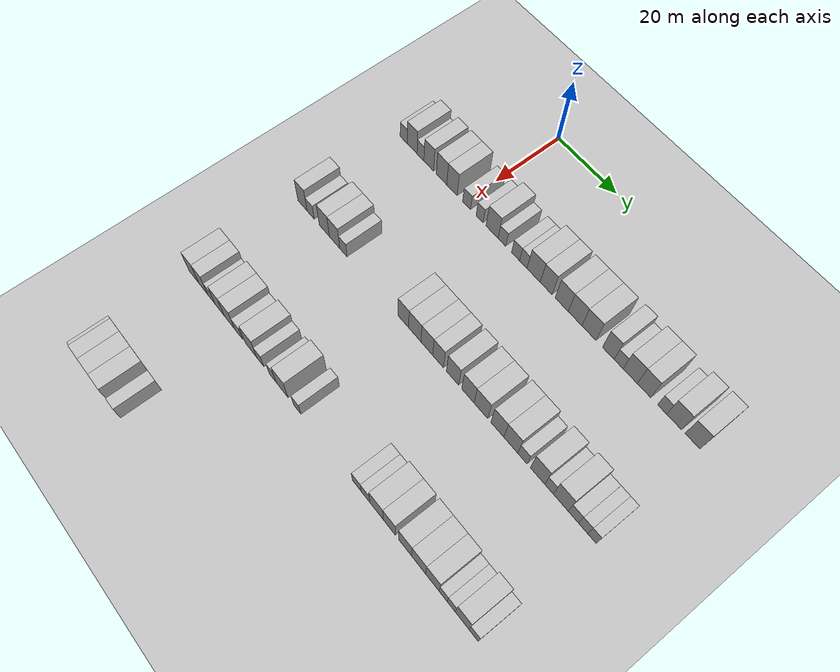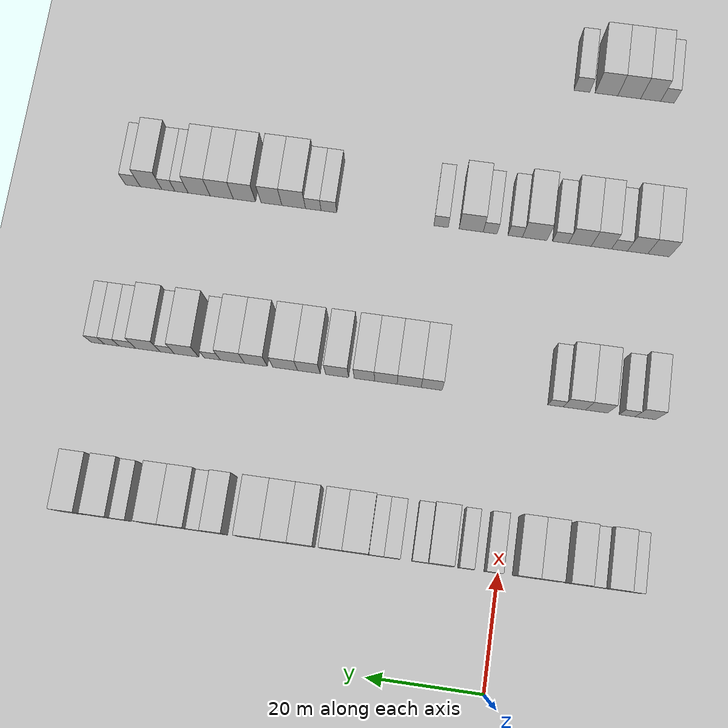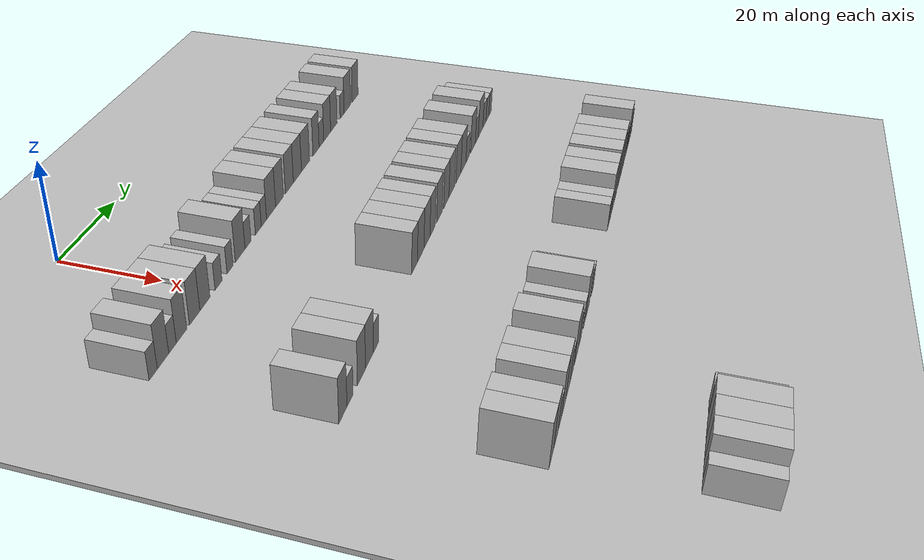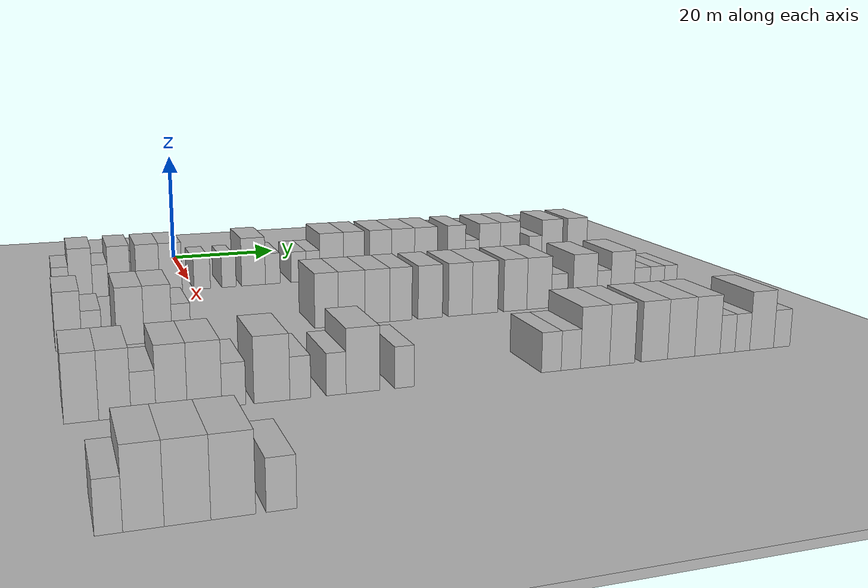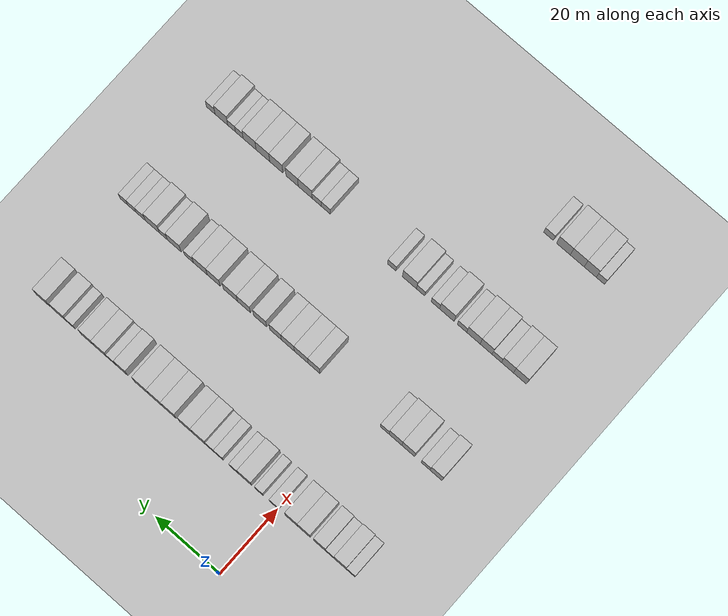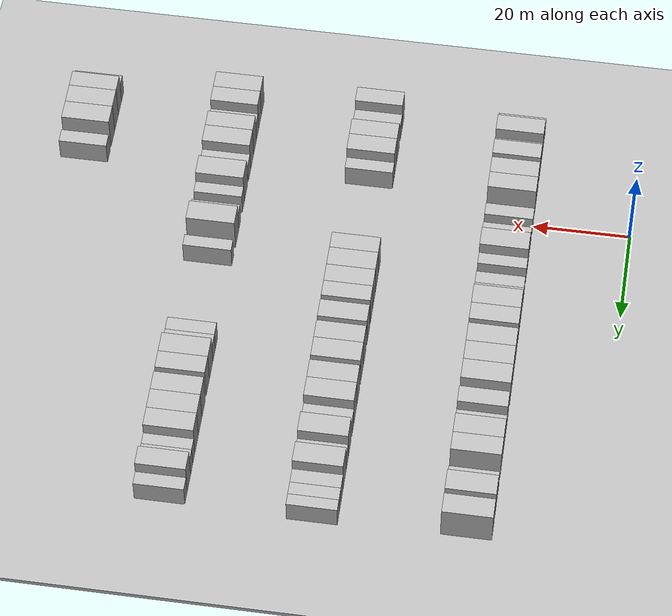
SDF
<sdf version="1.6">
 <world name="default">
  <include><name>ground_plane_1</name><uri>model://HANNAS_ground_plane</uri></include>
  <include>
   <name>ground_plane_2</name>
   <uri>model://HANNAS_ground_plane</uri>
   <pose>100 0 0  0 0 0</pose>
  </include>
  <model name="building_104">
   <static>1</static>
   <pose>25.0000 -22.5102 0 0.000000 0.000000 0.000000</pose>
   <link name="link">
    <pose>0 0 3.00 0 0 0</pose>
    <collision name="collision"><geometry><box><size>10.0000 2.6948 6.0000</size></box></geometry></collision>
    <visual name="visual">
     <cast_shadows>0</cast_shadows>
     <geometry><box><size>10.0000 2.6948 6.0000</size></box></geometry>
     <material>
      <script>
       <uri>model://HANNAS_wall/materials/scripts</uri>
       <uri>model://HANNAS_wall/materials/textures</uri>
       <name>vrc/HANNAS_wall</name>
      </script>
     </material>
    </visual>
   </link>
  </model>
  <model name="building_105">
   <static>1</static>
   <pose>25.0000 -19.2534 0 0.000000 0.000000 0.000000</pose>
   <link name="link">
    <pose>0 0 4.50 0 0 0</pose>
    <collision name="collision"><geometry><box><size>10.0000 3.8188 9.0000</size></box></geometry></collision>
    <visual name="visual">
     <cast_shadows>0</cast_shadows>
     <geometry><box><size>10.0000 3.8188 9.0000</size></box></geometry>
     <material>
      <script>
       <uri>model://HANNAS_wall/materials/scripts</uri>
       <uri>model://HANNAS_wall/materials/textures</uri>
       <name>vrc/HANNAS_wall</name>
      </script>
     </material>
    </visual>
   </link>
  </model>
  <model name="building_106">
   <static>1</static>
   <pose>25.0000 -16.0500 0 0.000000 0.000000 0.000000</pose>
   <link name="link">
    <pose>0 0 3.00 0 0 0</pose>
    <collision name="collision"><geometry><box><size>10.0000 2.5881 6.0000</size></box></geometry></collision>
    <visual name="visual">
     <cast_shadows>0</cast_shadows>
     <geometry><box><size>10.0000 2.5881 6.0000</size></box></geometry>
     <material>
      <script>
       <uri>model://HANNAS_wall/materials/scripts</uri>
       <uri>model://HANNAS_wall/materials/textures</uri>
       <name>vrc/HANNAS_wall</name>
      </script>
     </material>
    </visual>
   </link>
  </model>
  <model name="building_107">
   <static>1</static>
   <pose>25.0000 -12.9239 0 0.000000 0.000000 0.000000</pose>
   <link name="link">
    <pose>0 0 4.50 0 0 0</pose>
    <collision name="collision"><geometry><box><size>10.0000 3.6641 9.0000</size></box></geometry></collision>
    <visual name="visual">
     <cast_shadows>0</cast_shadows>
     <geometry><box><size>10.0000 3.6641 9.0000</size></box></geometry>
     <material>
      <script>
       <uri>model://HANNAS_wall/materials/scripts</uri>
       <uri>model://HANNAS_wall/materials/textures</uri>
       <name>vrc/HANNAS_wall</name>
      </script>
     </material>
    </visual>
   </link>
  </model>
  <model name="building_108">
   <static>1</static>
   <pose>25.0000 -8.1475 0 0.000000 0.000000 0.000000</pose>
   <link name="link">
    <pose>0 0 4.50 0 0 0</pose>
    <collision name="collision"><geometry><box><size>10.0000 3.8888 9.0000</size></box></geometry></collision>
    <visual name="visual">
     <cast_shadows>0</cast_shadows>
     <geometry><box><size>10.0000 3.8888 9.0000</size></box></geometry>
     <material>
      <script>
       <uri>model://HANNAS_wall/materials/scripts</uri>
       <uri>model://HANNAS_wall/materials/textures</uri>
       <name>vrc/HANNAS_wall</name>
      </script>
     </material>
    </visual>
   </link>
  </model>
  <model name="building_109">
   <static>1</static>
   <pose>25.0000 -4.2814 0 0.000000 0.000000 0.000000</pose>
   <link name="link">
    <pose>0 0 4.50 0 0 0</pose>
    <collision name="collision"><geometry><box><size>10.0000 3.8434 9.0000</size></box></geometry></collision>
    <visual name="visual">
     <cast_shadows>0</cast_shadows>
     <geometry><box><size>10.0000 3.8434 9.0000</size></box></geometry>
     <material>
      <script>
       <uri>model://HANNAS_wall/materials/scripts</uri>
       <uri>model://HANNAS_wall/materials/textures</uri>
       <name>vrc/HANNAS_wall</name>
      </script>
     </material>
    </visual>
   </link>
  </model>
  <model name="building_110">
   <static>1</static>
   <pose>25.0000 1.0662 0 0.000000 0.000000 0.000000</pose>
   <link name="link">
    <pose>0 0 3.00 0 0 0</pose>
    <collision name="collision"><geometry><box><size>10.0000 2.8519 6.0000</size></box></geometry></collision>
    <visual name="visual">
     <cast_shadows>0</cast_shadows>
     <geometry><box><size>10.0000 2.8519 6.0000</size></box></geometry>
     <material>
      <script>
       <uri>model://HANNAS_wall/materials/scripts</uri>
       <uri>model://HANNAS_wall/materials/textures</uri>
       <name>vrc/HANNAS_wall</name>
      </script>
     </material>
    </visual>
   </link>
  </model>
  <model name="building_111">
   <static>1</static>
   <pose>25.0000 5.7460 0 0.000000 0.000000 0.000000</pose>
   <link name="link">
    <pose>0 0 3.00 0 0 0</pose>
    <collision name="collision"><geometry><box><size>10.0000 2.5076 6.0000</size></box></geometry></collision>
    <visual name="visual">
     <cast_shadows>0</cast_shadows>
     <geometry><box><size>10.0000 2.5076 6.0000</size></box></geometry>
     <material>
      <script>
       <uri>model://HANNAS_wall/materials/scripts</uri>
       <uri>model://HANNAS_wall/materials/textures</uri>
       <name>vrc/HANNAS_wall</name>
      </script>
     </material>
    </visual>
   </link>
  </model>
  <model name="building_112">
   <static>1</static>
   <pose>25.0000 10.1186 0 0.000000 0.000000 0.000000</pose>
   <link name="link">
    <pose>0 0 4.50 0 0 0</pose>
    <collision name="collision"><geometry><box><size>10.0000 4.2375 9.0000</size></box></geometry></collision>
    <visual name="visual">
     <cast_shadows>0</cast_shadows>
     <geometry><box><size>10.0000 4.2375 9.0000</size></box></geometry>
     <material>
      <script>
       <uri>model://HANNAS_wall/materials/scripts</uri>
       <uri>model://HANNAS_wall/materials/textures</uri>
       <name>vrc/HANNAS_wall</name>
      </script>
     </material>
    </visual>
   </link>
  </model>
  <model name="building_113">
   <static>1</static>
   <pose>25.0000 13.5676 0 0.000000 0.000000 0.000000</pose>
   <link name="link">
    <pose>0 0 3.00 0 0 0</pose>
    <collision name="collision"><geometry><box><size>10.0000 2.6605 6.0000</size></box></geometry></collision>
    <visual name="visual">
     <cast_shadows>0</cast_shadows>
     <geometry><box><size>10.0000 2.6605 6.0000</size></box></geometry>
     <material>
      <script>
       <uri>model://HANNAS_wall/materials/scripts</uri>
       <uri>model://HANNAS_wall/materials/textures</uri>
       <name>vrc/HANNAS_wall</name>
      </script>
     </material>
    </visual>
   </link>
  </model>
  <model name="building_114">
   <static>1</static>
   <pose>25.0000 18.2735 0 0.000000 0.000000 0.000000</pose>
   <link name="link">
    <pose>0 0 3.00 0 0 0</pose>
    <collision name="collision"><geometry><box><size>10.0000 2.7513 6.0000</size></box></geometry></collision>
    <visual name="visual">
     <cast_shadows>0</cast_shadows>
     <geometry><box><size>10.0000 2.7513 6.0000</size></box></geometry>
     <material>
      <script>
       <uri>model://HANNAS_wall/materials/scripts</uri>
       <uri>model://HANNAS_wall/materials/textures</uri>
       <name>vrc/HANNAS_wall</name>
      </script>
     </material>
    </visual>
   </link>
  </model>
  <model name="building_115">
   <static>1</static>
   <pose>25.0000 20.9098 0 0.000000 0.000000 0.000000</pose>
   <link name="link">
    <pose>0 0 3.00 0 0 0</pose>
    <collision name="collision"><geometry><box><size>10.0000 2.5214 6.0000</size></box></geometry></collision>
    <visual name="visual">
     <cast_shadows>0</cast_shadows>
     <geometry><box><size>10.0000 2.5214 6.0000</size></box></geometry>
     <material>
      <script>
       <uri>model://HANNAS_wall/materials/scripts</uri>
       <uri>model://HANNAS_wall/materials/textures</uri>
       <name>vrc/HANNAS_wall</name>
      </script>
     </material>
    </visual>
   </link>
  </model>
  <model name="building_116">
   <static>1</static>
   <pose>25.0000 24.3897 0 0.000000 0.000000 0.000000</pose>
   <link name="link">
    <pose>0 0 4.50 0 0 0</pose>
    <collision name="collision"><geometry><box><size>10.0000 4.4384 9.0000</size></box></geometry></collision>
    <visual name="visual">
     <cast_shadows>0</cast_shadows>
     <geometry><box><size>10.0000 4.4384 9.0000</size></box></geometry>
     <material>
      <script>
       <uri>model://HANNAS_wall/materials/scripts</uri>
       <uri>model://HANNAS_wall/materials/textures</uri>
       <name>vrc/HANNAS_wall</name>
      </script>
     </material>
    </visual>
   </link>
  </model>
  <model name="building_117">
   <static>1</static>
   <pose>25.0000 28.5710 0 0.000000 0.000000 0.000000</pose>
   <link name="link">
    <pose>0 0 4.50 0 0 0</pose>
    <collision name="collision"><geometry><box><size>10.0000 3.9242 9.0000</size></box></geometry></collision>
    <visual name="visual">
     <cast_shadows>0</cast_shadows>
     <geometry><box><size>10.0000 3.9242 9.0000</size></box></geometry>
     <material>
      <script>
       <uri>model://HANNAS_wall/materials/scripts</uri>
       <uri>model://HANNAS_wall/materials/textures</uri>
       <name>vrc/HANNAS_wall</name>
      </script>
     </material>
    </visual>
   </link>
  </model>
  <model name="building_118">
   <static>1</static>
   <pose>25.0000 33.6658 0 0.000000 0.000000 0.000000</pose>
   <link name="link">
    <pose>0 0 4.50 0 0 0</pose>
    <collision name="collision"><geometry><box><size>10.0000 4.2655 9.0000</size></box></geometry></collision>
    <visual name="visual">
     <cast_shadows>0</cast_shadows>
     <geometry><box><size>10.0000 4.2655 9.0000</size></box></geometry>
     <material>
      <script>
       <uri>model://HANNAS_wall/materials/scripts</uri>
       <uri>model://HANNAS_wall/materials/textures</uri>
       <name>vrc/HANNAS_wall</name>
      </script>
     </material>
    </visual>
   </link>
  </model>
  <model name="building_119">
   <static>1</static>
   <pose>25.0000 37.9929 0 0.000000 0.000000 0.000000</pose>
   <link name="link">
    <pose>0 0 4.50 0 0 0</pose>
    <collision name="collision"><geometry><box><size>10.0000 4.3886 9.0000</size></box></geometry></collision>
    <visual name="visual">
     <cast_shadows>0</cast_shadows>
     <geometry><box><size>10.0000 4.3886 9.0000</size></box></geometry>
     <material>
      <script>
       <uri>model://HANNAS_wall/materials/scripts</uri>
       <uri>model://HANNAS_wall/materials/textures</uri>
       <name>vrc/HANNAS_wall</name>
      </script>
     </material>
    </visual>
   </link>
  </model>
  <model name="building_120">
   <static>1</static>
   <pose>25.0000 42.4269 0 0.000000 0.000000 0.000000</pose>
   <link name="link">
    <pose>0 0 4.50 0 0 0</pose>
    <collision name="collision"><geometry><box><size>10.0000 4.4793 9.0000</size></box></geometry></collision>
    <visual name="visual">
     <cast_shadows>0</cast_shadows>
     <geometry><box><size>10.0000 4.4793 9.0000</size></box></geometry>
     <material>
      <script>
       <uri>model://HANNAS_wall/materials/scripts</uri>
       <uri>model://HANNAS_wall/materials/textures</uri>
       <name>vrc/HANNAS_wall</name>
      </script>
     </material>
    </visual>
   </link>
  </model>
  <model name="building_121">
   <static>1</static>
   <pose>25.0000 48.4725 0 0.000000 0.000000 0.000000</pose>
   <link name="link">
    <pose>0 0 4.50 0 0 0</pose>
    <collision name="collision"><geometry><box><size>10.0000 3.6120 9.0000</size></box></geometry></collision>
    <visual name="visual">
     <cast_shadows>0</cast_shadows>
     <geometry><box><size>10.0000 3.6120 9.0000</size></box></geometry>
     <material>
      <script>
       <uri>model://HANNAS_wall/materials/scripts</uri>
       <uri>model://HANNAS_wall/materials/textures</uri>
       <name>vrc/HANNAS_wall</name>
      </script>
     </material>
    </visual>
   </link>
  </model>
  <model name="building_122">
   <static>1</static>
   <pose>25.0000 51.6666 0 0.000000 0.000000 0.000000</pose>
   <link name="link">
    <pose>0 0 3.00 0 0 0</pose>
    <collision name="collision"><geometry><box><size>10.0000 2.7762 6.0000</size></box></geometry></collision>
    <visual name="visual">
     <cast_shadows>0</cast_shadows>
     <geometry><box><size>10.0000 2.7762 6.0000</size></box></geometry>
     <material>
      <script>
       <uri>model://HANNAS_wall/materials/scripts</uri>
       <uri>model://HANNAS_wall/materials/textures</uri>
       <name>vrc/HANNAS_wall</name>
      </script>
     </material>
    </visual>
   </link>
  </model>
  <model name="building_123">
   <static>1</static>
   <pose>25.0000 55.1984 0 0.000000 0.000000 0.000000</pose>
   <link name="link">
    <pose>0 0 4.50 0 0 0</pose>
    <collision name="collision"><geometry><box><size>10.0000 4.2874 9.0000</size></box></geometry></collision>
    <visual name="visual">
     <cast_shadows>0</cast_shadows>
     <geometry><box><size>10.0000 4.2874 9.0000</size></box></geometry>
     <material>
      <script>
       <uri>model://HANNAS_wall/materials/scripts</uri>
       <uri>model://HANNAS_wall/materials/textures</uri>
       <name>vrc/HANNAS_wall</name>
      </script>
     </material>
    </visual>
   </link>
  </model>
  <model name="building_124">
   <static>1</static>
   <pose>25.0000 59.3511 0 0.000000 0.000000 0.000000</pose>
   <link name="link">
    <pose>0 0 4.50 0 0 0</pose>
    <collision name="collision"><geometry><box><size>10.0000 4.0181 9.0000</size></box></geometry></collision>
    <visual name="visual">
     <cast_shadows>0</cast_shadows>
     <geometry><box><size>10.0000 4.0181 9.0000</size></box></geometry>
     <material>
      <script>
       <uri>model://HANNAS_wall/materials/scripts</uri>
       <uri>model://HANNAS_wall/materials/textures</uri>
       <name>vrc/HANNAS_wall</name>
      </script>
     </material>
    </visual>
   </link>
  </model>
  <model name="building_125">
   <static>1</static>
   <pose>25.0000 64.6776 0 0.000000 0.000000 0.000000</pose>
   <link name="link">
    <pose>0 0 3.00 0 0 0</pose>
    <collision name="collision"><geometry><box><size>10.0000 2.6349 6.0000</size></box></geometry></collision>
    <visual name="visual">
     <cast_shadows>0</cast_shadows>
     <geometry><box><size>10.0000 2.6349 6.0000</size></box></geometry>
     <material>
      <script>
       <uri>model://HANNAS_wall/materials/scripts</uri>
       <uri>model://HANNAS_wall/materials/textures</uri>
       <name>vrc/HANNAS_wall</name>
      </script>
     </material>
    </visual>
   </link>
  </model>
  <model name="building_126">
   <static>1</static>
   <pose>25.0000 68.1694 0 0.000000 0.000000 0.000000</pose>
   <link name="link">
    <pose>0 0 4.50 0 0 0</pose>
    <collision name="collision"><geometry><box><size>10.0000 4.3487 9.0000</size></box></geometry></collision>
    <visual name="visual">
     <cast_shadows>0</cast_shadows>
     <geometry><box><size>10.0000 4.3487 9.0000</size></box></geometry>
     <material>
      <script>
       <uri>model://HANNAS_wall/materials/scripts</uri>
       <uri>model://HANNAS_wall/materials/textures</uri>
       <name>vrc/HANNAS_wall</name>
      </script>
     </material>
    </visual>
   </link>
  </model>
  <model name="building_127">
   <static>1</static>
   <pose>25.0000 73.4701 0 0.000000 0.000000 0.000000</pose>
   <link name="link">
    <pose>0 0 4.50 0 0 0</pose>
    <collision name="collision"><geometry><box><size>10.0000 4.2526 9.0000</size></box></geometry></collision>
    <visual name="visual">
     <cast_shadows>0</cast_shadows>
     <geometry><box><size>10.0000 4.2526 9.0000</size></box></geometry>
     <material>
      <script>
       <uri>model://HANNAS_wall/materials/scripts</uri>
       <uri>model://HANNAS_wall/materials/textures</uri>
       <name>vrc/HANNAS_wall</name>
      </script>
     </material>
    </visual>
   </link>
  </model>
  <model name="building_341">
   <static>1</static>
   <pose>55.0000 -22.4541 0 0.000000 0.000000 0.000000</pose>
   <link name="link">
    <pose>0 0 4.50 0 0 0</pose>
    <collision name="collision"><geometry><box><size>10.0000 3.6306 9.0000</size></box></geometry></collision>
    <visual name="visual">
     <cast_shadows>0</cast_shadows>
     <geometry><box><size>10.0000 3.6306 9.0000</size></box></geometry>
     <material>
      <script>
       <uri>model://HANNAS_wall/materials/scripts</uri>
       <uri>model://HANNAS_wall/materials/textures</uri>
       <name>vrc/HANNAS_wall</name>
      </script>
     </material>
    </visual>
   </link>
  </model>
  <model name="building_342">
   <static>1</static>
   <pose>55.0000 -19.2400 0 0.000000 0.000000 0.000000</pose>
   <link name="link">
    <pose>0 0 3.00 0 0 0</pose>
    <collision name="collision"><geometry><box><size>10.0000 2.7975 6.0000</size></box></geometry></collision>
    <visual name="visual">
     <cast_shadows>0</cast_shadows>
     <geometry><box><size>10.0000 2.7975 6.0000</size></box></geometry>
     <material>
      <script>
       <uri>model://HANNAS_wall/materials/scripts</uri>
       <uri>model://HANNAS_wall/materials/textures</uri>
       <name>vrc/HANNAS_wall</name>
      </script>
     </material>
    </visual>
   </link>
  </model>
  <model name="building_343">
   <static>1</static>
   <pose>55.0000 -13.8850 0 0.000000 0.000000 0.000000</pose>
   <link name="link">
    <pose>0 0 4.50 0 0 0</pose>
    <collision name="collision"><geometry><box><size>10.0000 3.9126 9.0000</size></box></geometry></collision>
    <visual name="visual">
     <cast_shadows>0</cast_shadows>
     <geometry><box><size>10.0000 3.9126 9.0000</size></box></geometry>
     <material>
      <script>
       <uri>model://HANNAS_wall/materials/scripts</uri>
       <uri>model://HANNAS_wall/materials/textures</uri>
       <name>vrc/HANNAS_wall</name>
      </script>
     </material>
    </visual>
   </link>
  </model>
  <model name="building_344">
   <static>1</static>
   <pose>55.0000 -9.9406 0 0.000000 0.000000 0.000000</pose>
   <link name="link">
    <pose>0 0 4.50 0 0 0</pose>
    <collision name="collision"><geometry><box><size>10.0000 3.9762 9.0000</size></box></geometry></collision>
    <visual name="visual">
     <cast_shadows>0</cast_shadows>
     <geometry><box><size>10.0000 3.9762 9.0000</size></box></geometry>
     <material>
      <script>
       <uri>model://HANNAS_wall/materials/scripts</uri>
       <uri>model://HANNAS_wall/materials/textures</uri>
       <name>vrc/HANNAS_wall</name>
      </script>
     </material>
    </visual>
   </link>
  </model>
  <model name="building_345">
   <static>1</static>
   <pose>55.0000 -6.5984 0 0.000000 0.000000 0.000000</pose>
   <link name="link">
    <pose>0 0 3.00 0 0 0</pose>
    <collision name="collision"><geometry><box><size>10.0000 2.7082 6.0000</size></box></geometry></collision>
    <visual name="visual">
     <cast_shadows>0</cast_shadows>
     <geometry><box><size>10.0000 2.7082 6.0000</size></box></geometry>
     <material>
      <script>
       <uri>model://HANNAS_wall/materials/scripts</uri>
       <uri>model://HANNAS_wall/materials/textures</uri>
       <name>vrc/HANNAS_wall</name>
      </script>
     </material>
    </visual>
   </link>
  </model>
  <model name="building_346">
   <static>1</static>
   <pose>55.0000 15.3348 0 0.000000 0.000000 0.000000</pose>
   <link name="link">
    <pose>0 0 4.50 0 0 0</pose>
    <collision name="collision"><geometry><box><size>10.0000 3.7194 9.0000</size></box></geometry></collision>
    <visual name="visual">
     <cast_shadows>0</cast_shadows>
     <geometry><box><size>10.0000 3.7194 9.0000</size></box></geometry>
     <material>
      <script>
       <uri>model://HANNAS_wall/materials/scripts</uri>
       <uri>model://HANNAS_wall/materials/textures</uri>
       <name>vrc/HANNAS_wall</name>
      </script>
     </material>
    </visual>
   </link>
  </model>
  <model name="building_347">
   <static>1</static>
   <pose>55.0000 19.3232 0 0.000000 0.000000 0.000000</pose>
   <link name="link">
    <pose>0 0 4.50 0 0 0</pose>
    <collision name="collision"><geometry><box><size>10.0000 4.2572 9.0000</size></box></geometry></collision>
    <visual name="visual">
     <cast_shadows>0</cast_shadows>
     <geometry><box><size>10.0000 4.2572 9.0000</size></box></geometry>
     <material>
      <script>
       <uri>model://HANNAS_wall/materials/scripts</uri>
       <uri>model://HANNAS_wall/materials/textures</uri>
       <name>vrc/HANNAS_wall</name>
      </script>
     </material>
    </visual>
   </link>
  </model>
  <model name="building_348">
   <static>1</static>
   <pose>55.0000 23.4698 0 0.000000 0.000000 0.000000</pose>
   <link name="link">
    <pose>0 0 4.50 0 0 0</pose>
    <collision name="collision"><geometry><box><size>10.0000 4.0360 9.0000</size></box></geometry></collision>
    <visual name="visual">
     <cast_shadows>0</cast_shadows>
     <geometry><box><size>10.0000 4.0360 9.0000</size></box></geometry>
     <material>
      <script>
       <uri>model://HANNAS_wall/materials/scripts</uri>
       <uri>model://HANNAS_wall/materials/textures</uri>
       <name>vrc/HANNAS_wall</name>
      </script>
     </material>
    </visual>
   </link>
  </model>
  <model name="building_349">
   <static>1</static>
   <pose>55.0000 27.2966 0 0.000000 0.000000 0.000000</pose>
   <link name="link">
    <pose>0 0 4.50 0 0 0</pose>
    <collision name="collision"><geometry><box><size>10.0000 3.6177 9.0000</size></box></geometry></collision>
    <visual name="visual">
     <cast_shadows>0</cast_shadows>
     <geometry><box><size>10.0000 3.6177 9.0000</size></box></geometry>
     <material>
      <script>
       <uri>model://HANNAS_wall/materials/scripts</uri>
       <uri>model://HANNAS_wall/materials/textures</uri>
       <name>vrc/HANNAS_wall</name>
      </script>
     </material>
    </visual>
   </link>
  </model>
  <model name="building_350">
   <static>1</static>
   <pose>55.0000 32.1451 0 0.000000 0.000000 0.000000</pose>
   <link name="link">
    <pose>0 0 4.50 0 0 0</pose>
    <collision name="collision"><geometry><box><size>10.0000 4.0793 9.0000</size></box></geometry></collision>
    <visual name="visual">
     <cast_shadows>0</cast_shadows>
     <geometry><box><size>10.0000 4.0793 9.0000</size></box></geometry>
     <material>
      <script>
       <uri>model://HANNAS_wall/materials/scripts</uri>
       <uri>model://HANNAS_wall/materials/textures</uri>
       <name>vrc/HANNAS_wall</name>
      </script>
     </material>
    </visual>
   </link>
  </model>
  <model name="building_351">
   <static>1</static>
   <pose>55.0000 37.2063 0 0.000000 0.000000 0.000000</pose>
   <link name="link">
    <pose>0 0 4.50 0 0 0</pose>
    <collision name="collision"><geometry><box><size>10.0000 4.0430 9.0000</size></box></geometry></collision>
    <visual name="visual">
     <cast_shadows>0</cast_shadows>
     <geometry><box><size>10.0000 4.0430 9.0000</size></box></geometry>
     <material>
      <script>
       <uri>model://HANNAS_wall/materials/scripts</uri>
       <uri>model://HANNAS_wall/materials/textures</uri>
       <name>vrc/HANNAS_wall</name>
      </script>
     </material>
    </visual>
   </link>
  </model>
  <model name="building_352">
   <static>1</static>
   <pose>55.0000 41.4403 0 0.000000 0.000000 0.000000</pose>
   <link name="link">
    <pose>0 0 4.50 0 0 0</pose>
    <collision name="collision"><geometry><box><size>10.0000 4.4250 9.0000</size></box></geometry></collision>
    <visual name="visual">
     <cast_shadows>0</cast_shadows>
     <geometry><box><size>10.0000 4.4250 9.0000</size></box></geometry>
     <material>
      <script>
       <uri>model://HANNAS_wall/materials/scripts</uri>
       <uri>model://HANNAS_wall/materials/textures</uri>
       <name>vrc/HANNAS_wall</name>
      </script>
     </material>
    </visual>
   </link>
  </model>
  <model name="building_353">
   <static>1</static>
   <pose>55.0000 46.7009 0 0.000000 0.000000 0.000000</pose>
   <link name="link">
    <pose>0 0 4.50 0 0 0</pose>
    <collision name="collision"><geometry><box><size>10.0000 4.0962 9.0000</size></box></geometry></collision>
    <visual name="visual">
     <cast_shadows>0</cast_shadows>
     <geometry><box><size>10.0000 4.0962 9.0000</size></box></geometry>
     <material>
      <script>
       <uri>model://HANNAS_wall/materials/scripts</uri>
       <uri>model://HANNAS_wall/materials/textures</uri>
       <name>vrc/HANNAS_wall</name>
      </script>
     </material>
    </visual>
   </link>
  </model>
  <model name="building_354">
   <static>1</static>
   <pose>55.0000 50.9217 0 0.000000 0.000000 0.000000</pose>
   <link name="link">
    <pose>0 0 4.50 0 0 0</pose>
    <collision name="collision"><geometry><box><size>10.0000 4.3456 9.0000</size></box></geometry></collision>
    <visual name="visual">
     <cast_shadows>0</cast_shadows>
     <geometry><box><size>10.0000 4.3456 9.0000</size></box></geometry>
     <material>
      <script>
       <uri>model://HANNAS_wall/materials/scripts</uri>
       <uri>model://HANNAS_wall/materials/textures</uri>
       <name>vrc/HANNAS_wall</name>
      </script>
     </material>
    </visual>
   </link>
  </model>
  <model name="building_355">
   <static>1</static>
   <pose>55.0000 54.5352 0 0.000000 0.000000 0.000000</pose>
   <link name="link">
    <pose>0 0 3.00 0 0 0</pose>
    <collision name="collision"><geometry><box><size>10.0000 2.8814 6.0000</size></box></geometry></collision>
    <visual name="visual">
     <cast_shadows>0</cast_shadows>
     <geometry><box><size>10.0000 2.8814 6.0000</size></box></geometry>
     <material>
      <script>
       <uri>model://HANNAS_wall/materials/scripts</uri>
       <uri>model://HANNAS_wall/materials/textures</uri>
       <name>vrc/HANNAS_wall</name>
      </script>
     </material>
    </visual>
   </link>
  </model>
  <model name="building_356">
   <static>1</static>
   <pose>55.0000 59.1632 0 0.000000 0.000000 0.000000</pose>
   <link name="link">
    <pose>0 0 4.50 0 0 0</pose>
    <collision name="collision"><geometry><box><size>10.0000 4.3745 9.0000</size></box></geometry></collision>
    <visual name="visual">
     <cast_shadows>0</cast_shadows>
     <geometry><box><size>10.0000 4.3745 9.0000</size></box></geometry>
     <material>
      <script>
       <uri>model://HANNAS_wall/materials/scripts</uri>
       <uri>model://HANNAS_wall/materials/textures</uri>
       <name>vrc/HANNAS_wall</name>
      </script>
     </material>
    </visual>
   </link>
  </model>
  <model name="building_357">
   <static>1</static>
   <pose>55.0000 62.6267 0 0.000000 0.000000 0.000000</pose>
   <link name="link">
    <pose>0 0 3.00 0 0 0</pose>
    <collision name="collision"><geometry><box><size>10.0000 2.5525 6.0000</size></box></geometry></collision>
    <visual name="visual">
     <cast_shadows>0</cast_shadows>
     <geometry><box><size>10.0000 2.5525 6.0000</size></box></geometry>
     <material>
      <script>
       <uri>model://HANNAS_wall/materials/scripts</uri>
       <uri>model://HANNAS_wall/materials/textures</uri>
       <name>vrc/HANNAS_wall</name>
      </script>
     </material>
    </visual>
   </link>
  </model>
  <model name="building_358">
   <static>1</static>
   <pose>55.0000 66.1001 0 0.000000 0.000000 0.000000</pose>
   <link name="link">
    <pose>0 0 4.50 0 0 0</pose>
    <collision name="collision"><geometry><box><size>10.0000 4.3944 9.0000</size></box></geometry></collision>
    <visual name="visual">
     <cast_shadows>0</cast_shadows>
     <geometry><box><size>10.0000 4.3944 9.0000</size></box></geometry>
     <material>
      <script>
       <uri>model://HANNAS_wall/materials/scripts</uri>
       <uri>model://HANNAS_wall/materials/textures</uri>
       <name>vrc/HANNAS_wall</name>
      </script>
     </material>
    </visual>
   </link>
  </model>
  <model name="building_359">
   <static>1</static>
   <pose>55.0000 69.7971 0 0.000000 0.000000 0.000000</pose>
   <link name="link">
    <pose>0 0 3.00 0 0 0</pose>
    <collision name="collision"><geometry><box><size>10.0000 2.9996 6.0000</size></box></geometry></collision>
    <visual name="visual">
     <cast_shadows>0</cast_shadows>
     <geometry><box><size>10.0000 2.9996 6.0000</size></box></geometry>
     <material>
      <script>
       <uri>model://HANNAS_wall/materials/scripts</uri>
       <uri>model://HANNAS_wall/materials/textures</uri>
       <name>vrc/HANNAS_wall</name>
      </script>
     </material>
    </visual>
   </link>
  </model>
  <model name="building_360">
   <static>1</static>
   <pose>55.0000 72.6339 0 0.000000 0.000000 0.000000</pose>
   <link name="link">
    <pose>0 0 3.00 0 0 0</pose>
    <collision name="collision"><geometry><box><size>10.0000 2.6739 6.0000</size></box></geometry></collision>
    <visual name="visual">
     <cast_shadows>0</cast_shadows>
     <geometry><box><size>10.0000 2.6739 6.0000</size></box></geometry>
     <material>
      <script>
       <uri>model://HANNAS_wall/materials/scripts</uri>
       <uri>model://HANNAS_wall/materials/textures</uri>
       <name>vrc/HANNAS_wall</name>
      </script>
     </material>
    </visual>
   </link>
  </model>
  <model name="building_361">
   <static>1</static>
   <pose>55.0000 75.1773 0 0.000000 0.000000 0.000000</pose>
   <link name="link">
    <pose>0 0 3.00 0 0 0</pose>
    <collision name="collision"><geometry><box><size>10.0000 2.4129 6.0000</size></box></geometry></collision>
    <visual name="visual">
     <cast_shadows>0</cast_shadows>
     <geometry><box><size>10.0000 2.4129 6.0000</size></box></geometry>
     <material>
      <script>
       <uri>model://HANNAS_wall/materials/scripts</uri>
       <uri>model://HANNAS_wall/materials/textures</uri>
       <name>vrc/HANNAS_wall</name>
      </script>
     </material>
    </visual>
   </link>
  </model>
  <model name="building_574">
   <static>1</static>
   <pose>85.0000 -22.2592 0 0.000000 0.000000 0.000000</pose>
   <link name="link">
    <pose>0 0 4.50 0 0 0</pose>
    <collision name="collision"><geometry><box><size>10.0000 3.9590 9.0000</size></box></geometry></collision>
    <visual name="visual">
     <cast_shadows>0</cast_shadows>
     <geometry><box><size>10.0000 3.9590 9.0000</size></box></geometry>
     <material>
      <script>
       <uri>model://HANNAS_wall/materials/scripts</uri>
       <uri>model://HANNAS_wall/materials/textures</uri>
       <name>vrc/HANNAS_wall</name>
      </script>
     </material>
    </visual>
   </link>
  </model>
  <model name="building_575">
   <static>1</static>
   <pose>85.0000 -18.4319 0 0.000000 0.000000 0.000000</pose>
   <link name="link">
    <pose>0 0 4.50 0 0 0</pose>
    <collision name="collision"><geometry><box><size>10.0000 3.6955 9.0000</size></box></geometry></collision>
    <visual name="visual">
     <cast_shadows>0</cast_shadows>
     <geometry><box><size>10.0000 3.6955 9.0000</size></box></geometry>
     <material>
      <script>
       <uri>model://HANNAS_wall/materials/scripts</uri>
       <uri>model://HANNAS_wall/materials/textures</uri>
       <name>vrc/HANNAS_wall</name>
      </script>
     </material>
    </visual>
   </link>
  </model>
  <model name="building_576">
   <static>1</static>
   <pose>85.0000 -15.1366 0 0.000000 0.000000 0.000000</pose>
   <link name="link">
    <pose>0 0 3.00 0 0 0</pose>
    <collision name="collision"><geometry><box><size>10.0000 2.8952 6.0000</size></box></geometry></collision>
    <visual name="visual">
     <cast_shadows>0</cast_shadows>
     <geometry><box><size>10.0000 2.8952 6.0000</size></box></geometry>
     <material>
      <script>
       <uri>model://HANNAS_wall/materials/scripts</uri>
       <uri>model://HANNAS_wall/materials/textures</uri>
       <name>vrc/HANNAS_wall</name>
      </script>
     </material>
    </visual>
   </link>
  </model>
  <model name="building_577">
   <static>1</static>
   <pose>85.0000 -11.8398 0 0.000000 0.000000 0.000000</pose>
   <link name="link">
    <pose>0 0 4.50 0 0 0</pose>
    <collision name="collision"><geometry><box><size>10.0000 3.6984 9.0000</size></box></geometry></collision>
    <visual name="visual">
     <cast_shadows>0</cast_shadows>
     <geometry><box><size>10.0000 3.6984 9.0000</size></box></geometry>
     <material>
      <script>
       <uri>model://HANNAS_wall/materials/scripts</uri>
       <uri>model://HANNAS_wall/materials/textures</uri>
       <name>vrc/HANNAS_wall</name>
      </script>
     </material>
    </visual>
   </link>
  </model>
  <model name="building_578">
   <static>1</static>
   <pose>85.0000 -7.9159 0 0.000000 0.000000 0.000000</pose>
   <link name="link">
    <pose>0 0 4.50 0 0 0</pose>
    <collision name="collision"><geometry><box><size>10.0000 4.1494 9.0000</size></box></geometry></collision>
    <visual name="visual">
     <cast_shadows>0</cast_shadows>
     <geometry><box><size>10.0000 4.1494 9.0000</size></box></geometry>
     <material>
      <script>
       <uri>model://HANNAS_wall/materials/scripts</uri>
       <uri>model://HANNAS_wall/materials/textures</uri>
       <name>vrc/HANNAS_wall</name>
      </script>
     </material>
    </visual>
   </link>
  </model>
  <model name="building_579">
   <static>1</static>
   <pose>85.0000 -4.3793 0 0.000000 0.000000 0.000000</pose>
   <link name="link">
    <pose>0 0 3.00 0 0 0</pose>
    <collision name="collision"><geometry><box><size>10.0000 2.9238 6.0000</size></box></geometry></collision>
    <visual name="visual">
     <cast_shadows>0</cast_shadows>
     <geometry><box><size>10.0000 2.9238 6.0000</size></box></geometry>
     <material>
      <script>
       <uri>model://HANNAS_wall/materials/scripts</uri>
       <uri>model://HANNAS_wall/materials/textures</uri>
       <name>vrc/HANNAS_wall</name>
      </script>
     </material>
    </visual>
   </link>
  </model>
  <model name="building_580">
   <static>1</static>
   <pose>85.0000 0.3200 0 0.000000 0.000000 0.000000</pose>
   <link name="link">
    <pose>0 0 4.50 0 0 0</pose>
    <collision name="collision"><geometry><box><size>10.0000 4.4747 9.0000</size></box></geometry></collision>
    <visual name="visual">
     <cast_shadows>0</cast_shadows>
     <geometry><box><size>10.0000 4.4747 9.0000</size></box></geometry>
     <material>
      <script>
       <uri>model://HANNAS_wall/materials/scripts</uri>
       <uri>model://HANNAS_wall/materials/textures</uri>
       <name>vrc/HANNAS_wall</name>
      </script>
     </material>
    </visual>
   </link>
  </model>
  <model name="building_581">
   <static>1</static>
   <pose>85.0000 3.8836 0 0.000000 0.000000 0.000000</pose>
   <link name="link">
    <pose>0 0 3.00 0 0 0</pose>
    <collision name="collision"><geometry><box><size>10.0000 2.6524 6.0000</size></box></geometry></collision>
    <visual name="visual">
     <cast_shadows>0</cast_shadows>
     <geometry><box><size>10.0000 2.6524 6.0000</size></box></geometry>
     <material>
      <script>
       <uri>model://HANNAS_wall/materials/scripts</uri>
       <uri>model://HANNAS_wall/materials/textures</uri>
       <name>vrc/HANNAS_wall</name>
      </script>
     </material>
    </visual>
   </link>
  </model>
  <model name="building_582">
   <static>1</static>
   <pose>85.0000 8.4864 0 0.000000 0.000000 0.000000</pose>
   <link name="link">
    <pose>0 0 3.00 0 0 0</pose>
    <collision name="collision"><geometry><box><size>10.0000 2.5532 6.0000</size></box></geometry></collision>
    <visual name="visual">
     <cast_shadows>0</cast_shadows>
     <geometry><box><size>10.0000 2.5532 6.0000</size></box></geometry>
     <material>
      <script>
       <uri>model://HANNAS_wall/materials/scripts</uri>
       <uri>model://HANNAS_wall/materials/textures</uri>
       <name>vrc/HANNAS_wall</name>
      </script>
     </material>
    </visual>
   </link>
  </model>
  <model name="building_583">
   <static>1</static>
   <pose>85.0000 11.9656 0 0.000000 0.000000 0.000000</pose>
   <link name="link">
    <pose>0 0 4.50 0 0 0</pose>
    <collision name="collision"><geometry><box><size>10.0000 4.4052 9.0000</size></box></geometry></collision>
    <visual name="visual">
     <cast_shadows>0</cast_shadows>
     <geometry><box><size>10.0000 4.4052 9.0000</size></box></geometry>
     <material>
      <script>
       <uri>model://HANNAS_wall/materials/scripts</uri>
       <uri>model://HANNAS_wall/materials/textures</uri>
       <name>vrc/HANNAS_wall</name>
      </script>
     </material>
    </visual>
   </link>
  </model>
  <model name="building_584">
   <static>1</static>
   <pose>85.0000 17.4822 0 0.000000 0.000000 0.000000</pose>
   <link name="link">
    <pose>0 0 3.00 0 0 0</pose>
    <collision name="collision"><geometry><box><size>10.0000 2.6282 6.0000</size></box></geometry></collision>
    <visual name="visual">
     <cast_shadows>0</cast_shadows>
     <geometry><box><size>10.0000 2.6282 6.0000</size></box></geometry>
     <material>
      <script>
       <uri>model://HANNAS_wall/materials/scripts</uri>
       <uri>model://HANNAS_wall/materials/textures</uri>
       <name>vrc/HANNAS_wall</name>
      </script>
     </material>
    </visual>
   </link>
  </model>
  <model name="building_585">
   <static>1</static>
   <pose>85.0000 38.1316 0 0.000000 0.000000 0.000000</pose>
   <link name="link">
    <pose>0 0 3.00 0 0 0</pose>
    <collision name="collision"><geometry><box><size>10.0000 2.8902 6.0000</size></box></geometry></collision>
    <visual name="visual">
     <cast_shadows>0</cast_shadows>
     <geometry><box><size>10.0000 2.8902 6.0000</size></box></geometry>
     <material>
      <script>
       <uri>model://HANNAS_wall/materials/scripts</uri>
       <uri>model://HANNAS_wall/materials/textures</uri>
       <name>vrc/HANNAS_wall</name>
      </script>
     </material>
    </visual>
   </link>
  </model>
  <model name="building_586">
   <static>1</static>
   <pose>85.0000 41.0197 0 0.000000 0.000000 0.000000</pose>
   <link name="link">
    <pose>0 0 3.00 0 0 0</pose>
    <collision name="collision"><geometry><box><size>10.0000 2.8860 6.0000</size></box></geometry></collision>
    <visual name="visual">
     <cast_shadows>0</cast_shadows>
     <geometry><box><size>10.0000 2.8860 6.0000</size></box></geometry>
     <material>
      <script>
       <uri>model://HANNAS_wall/materials/scripts</uri>
       <uri>model://HANNAS_wall/materials/textures</uri>
       <name>vrc/HANNAS_wall</name>
      </script>
     </material>
    </visual>
   </link>
  </model>
  <model name="building_587">
   <static>1</static>
   <pose>85.0000 44.6502 0 0.000000 0.000000 0.000000</pose>
   <link name="link">
    <pose>0 0 4.50 0 0 0</pose>
    <collision name="collision"><geometry><box><size>10.0000 4.3751 9.0000</size></box></geometry></collision>
    <visual name="visual">
     <cast_shadows>0</cast_shadows>
     <geometry><box><size>10.0000 4.3751 9.0000</size></box></geometry>
     <material>
      <script>
       <uri>model://HANNAS_wall/materials/scripts</uri>
       <uri>model://HANNAS_wall/materials/textures</uri>
       <name>vrc/HANNAS_wall</name>
      </script>
     </material>
    </visual>
   </link>
  </model>
  <model name="building_588">
   <static>1</static>
   <pose>85.0000 48.7745 0 0.000000 0.000000 0.000000</pose>
   <link name="link">
    <pose>0 0 4.50 0 0 0</pose>
    <collision name="collision"><geometry><box><size>10.0000 3.8735 9.0000</size></box></geometry></collision>
    <visual name="visual">
     <cast_shadows>0</cast_shadows>
     <geometry><box><size>10.0000 3.8735 9.0000</size></box></geometry>
     <material>
      <script>
       <uri>model://HANNAS_wall/materials/scripts</uri>
       <uri>model://HANNAS_wall/materials/textures</uri>
       <name>vrc/HANNAS_wall</name>
      </script>
     </material>
    </visual>
   </link>
  </model>
  <model name="building_589">
   <static>1</static>
   <pose>85.0000 53.7791 0 0.000000 0.000000 0.000000</pose>
   <link name="link">
    <pose>0 0 4.50 0 0 0</pose>
    <collision name="collision"><geometry><box><size>10.0000 4.1356 9.0000</size></box></geometry></collision>
    <visual name="visual">
     <cast_shadows>0</cast_shadows>
     <geometry><box><size>10.0000 4.1356 9.0000</size></box></geometry>
     <material>
      <script>
       <uri>model://HANNAS_wall/materials/scripts</uri>
       <uri>model://HANNAS_wall/materials/textures</uri>
       <name>vrc/HANNAS_wall</name>
      </script>
     </material>
    </visual>
   </link>
  </model>
  <model name="building_590">
   <static>1</static>
   <pose>85.0000 58.0086 0 0.000000 0.000000 0.000000</pose>
   <link name="link">
    <pose>0 0 4.50 0 0 0</pose>
    <collision name="collision"><geometry><box><size>10.0000 4.3234 9.0000</size></box></geometry></collision>
    <visual name="visual">
     <cast_shadows>0</cast_shadows>
     <geometry><box><size>10.0000 4.3234 9.0000</size></box></geometry>
     <material>
      <script>
       <uri>model://HANNAS_wall/materials/scripts</uri>
       <uri>model://HANNAS_wall/materials/textures</uri>
       <name>vrc/HANNAS_wall</name>
      </script>
     </material>
    </visual>
   </link>
  </model>
  <model name="building_591">
   <static>1</static>
   <pose>85.0000 62.2203 0 0.000000 0.000000 0.000000</pose>
   <link name="link">
    <pose>0 0 4.50 0 0 0</pose>
    <collision name="collision"><geometry><box><size>10.0000 4.1002 9.0000</size></box></geometry></collision>
    <visual name="visual">
     <cast_shadows>0</cast_shadows>
     <geometry><box><size>10.0000 4.1002 9.0000</size></box></geometry>
     <material>
      <script>
       <uri>model://HANNAS_wall/materials/scripts</uri>
       <uri>model://HANNAS_wall/materials/textures</uri>
       <name>vrc/HANNAS_wall</name>
      </script>
     </material>
    </visual>
   </link>
  </model>
  <model name="building_592">
   <static>1</static>
   <pose>85.0000 65.4981 0 0.000000 0.000000 0.000000</pose>
   <link name="link">
    <pose>0 0 3.00 0 0 0</pose>
    <collision name="collision"><geometry><box><size>10.0000 2.4552 6.0000</size></box></geometry></collision>
    <visual name="visual">
     <cast_shadows>0</cast_shadows>
     <geometry><box><size>10.0000 2.4552 6.0000</size></box></geometry>
     <material>
      <script>
       <uri>model://HANNAS_wall/materials/scripts</uri>
       <uri>model://HANNAS_wall/materials/textures</uri>
       <name>vrc/HANNAS_wall</name>
      </script>
     </material>
    </visual>
   </link>
  </model>
  <model name="building_593">
   <static>1</static>
   <pose>85.0000 67.9413 0 0.000000 0.000000 0.000000</pose>
   <link name="link">
    <pose>0 0 3.00 0 0 0</pose>
    <collision name="collision"><geometry><box><size>10.0000 2.4312 6.0000</size></box></geometry></collision>
    <visual name="visual">
     <cast_shadows>0</cast_shadows>
     <geometry><box><size>10.0000 2.4312 6.0000</size></box></geometry>
     <material>
      <script>
       <uri>model://HANNAS_wall/materials/scripts</uri>
       <uri>model://HANNAS_wall/materials/textures</uri>
       <name>vrc/HANNAS_wall</name>
      </script>
     </material>
    </visual>
   </link>
  </model>
  <model name="building_594">
   <static>1</static>
   <pose>85.0000 71.1663 0 0.000000 0.000000 0.000000</pose>
   <link name="link">
    <pose>0 0 4.50 0 0 0</pose>
    <collision name="collision"><geometry><box><size>10.0000 4.0189 9.0000</size></box></geometry></collision>
    <visual name="visual">
     <cast_shadows>0</cast_shadows>
     <geometry><box><size>10.0000 4.0189 9.0000</size></box></geometry>
     <material>
      <script>
       <uri>model://HANNAS_wall/materials/scripts</uri>
       <uri>model://HANNAS_wall/materials/textures</uri>
       <name>vrc/HANNAS_wall</name>
      </script>
     </material>
    </visual>
   </link>
  </model>
  <model name="building_595">
   <static>1</static>
   <pose>85.0000 74.5593 0 0.000000 0.000000 0.000000</pose>
   <link name="link">
    <pose>0 0 3.00 0 0 0</pose>
    <collision name="collision"><geometry><box><size>10.0000 2.7671 6.0000</size></box></geometry></collision>
    <visual name="visual">
     <cast_shadows>0</cast_shadows>
     <geometry><box><size>10.0000 2.7671 6.0000</size></box></geometry>
     <material>
      <script>
       <uri>model://HANNAS_wall/materials/scripts</uri>
       <uri>model://HANNAS_wall/materials/textures</uri>
       <name>vrc/HANNAS_wall</name>
      </script>
     </material>
    </visual>
   </link>
  </model>
  <model name="building_802">
   <static>1</static>
   <pose>115.0000 -21.3757 0 0.000000 0.000000 0.000000</pose>
   <link name="link">
    <pose>0 0 3.00 0 0 0</pose>
    <collision name="collision"><geometry><box><size>10.0000 2.5357 6.0000</size></box></geometry></collision>
    <visual name="visual">
     <cast_shadows>0</cast_shadows>
     <geometry><box><size>10.0000 2.5357 6.0000</size></box></geometry>
     <material>
      <script>
       <uri>model://HANNAS_wall/materials/scripts</uri>
       <uri>model://HANNAS_wall/materials/textures</uri>
       <name>vrc/HANNAS_wall</name>
      </script>
     </material>
    </visual>
   </link>
  </model>
  <model name="building_803">
   <static>1</static>
   <pose>115.0000 -18.2341 0 0.000000 0.000000 0.000000</pose>
   <link name="link">
    <pose>0 0 4.50 0 0 0</pose>
    <collision name="collision"><geometry><box><size>10.0000 3.7475 9.0000</size></box></geometry></collision>
    <visual name="visual">
     <cast_shadows>0</cast_shadows>
     <geometry><box><size>10.0000 3.7475 9.0000</size></box></geometry>
     <material>
      <script>
       <uri>model://HANNAS_wall/materials/scripts</uri>
       <uri>model://HANNAS_wall/materials/textures</uri>
       <name>vrc/HANNAS_wall</name>
      </script>
     </material>
    </visual>
   </link>
  </model>
  <model name="building_804">
   <static>1</static>
   <pose>115.0000 -14.2050 0 0.000000 0.000000 0.000000</pose>
   <link name="link">
    <pose>0 0 4.50 0 0 0</pose>
    <collision name="collision"><geometry><box><size>10.0000 4.3106 9.0000</size></box></geometry></collision>
    <visual name="visual">
     <cast_shadows>0</cast_shadows>
     <geometry><box><size>10.0000 4.3106 9.0000</size></box></geometry>
     <material>
      <script>
       <uri>model://HANNAS_wall/materials/scripts</uri>
       <uri>model://HANNAS_wall/materials/textures</uri>
       <name>vrc/HANNAS_wall</name>
      </script>
     </material>
    </visual>
   </link>
  </model>
  <model name="building_805">
   <static>1</static>
   <pose>115.0000 -9.9214 0 0.000000 0.000000 0.000000</pose>
   <link name="link">
    <pose>0 0 4.50 0 0 0</pose>
    <collision name="collision"><geometry><box><size>10.0000 4.2565 9.0000</size></box></geometry></collision>
    <visual name="visual">
     <cast_shadows>0</cast_shadows>
     <geometry><box><size>10.0000 4.2565 9.0000</size></box></geometry>
     <material>
      <script>
       <uri>model://HANNAS_wall/materials/scripts</uri>
       <uri>model://HANNAS_wall/materials/textures</uri>
       <name>vrc/HANNAS_wall</name>
      </script>
     </material>
    </visual>
   </link>
  </model>
  <model name="building_806">
   <static>1</static>
   <pose>115.0000 -5.2998 0 0.000000 0.000000 0.000000</pose>
   <link name="link">
    <pose>0 0 3.00 0 0 0</pose>
    <collision name="collision"><geometry><box><size>10.0000 2.9867 6.0000</size></box></geometry></collision>
    <visual name="visual">
     <cast_shadows>0</cast_shadows>
     <geometry><box><size>10.0000 2.9867 6.0000</size></box></geometry>
     <material>
      <script>
       <uri>model://HANNAS_wall/materials/scripts</uri>
       <uri>model://HANNAS_wall/materials/textures</uri>
       <name>vrc/HANNAS_wall</name>
      </script>
     </material>
    </visual>
   </link>
  </model>
 </world>
</sdf>
